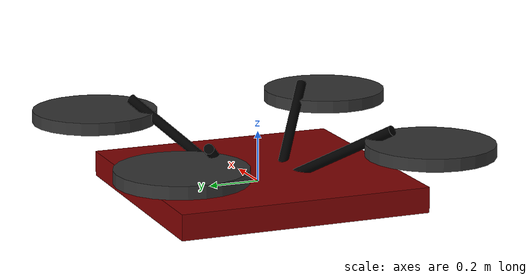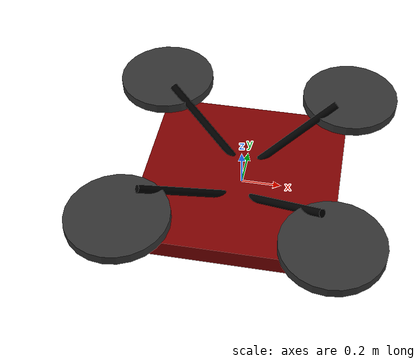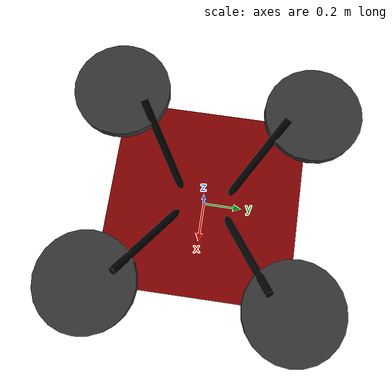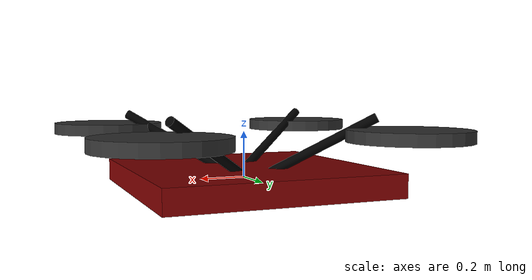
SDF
<?xml version="1.0" ?>
<sdf version="1.7">
    <model name="quadcopter">
        <static>true</static> <!-- The model won't move unless controlled -->

        <!-- Square Base -->
        <link name="base_link">
            <inertial>
                <mass>0</mass> <!-- Weightless -->
                <inertia>
                    <ixx>0</ixx> <iyy>0</iyy> <izz>0</izz>
                </inertia>
            </inertial>
            <visual name="base_visual">
                <geometry>
                    <box>
                        <size>1 1 0.1</size> <!-- Square base of 1x1 with 0.1 thickness -->
                    </box>
                </geometry>
                <material>
                    <ambient>0.2 0.2 0.2 1</ambient> <!-- Red -->
                    <diffuse>0.5 0 0 1</diffuse>
                </material>
            </visual>
            <collision name="base_collision">
                <geometry>
                    <box>
                        <size>1 1 0.1</size>
                    </box>
                </geometry>
            </collision>
        </link>

        <!-- Four Rotors -->
        <link name="rotor_1">
            <pose>0.5 0.5 0.2 0 0 0</pose> <!-- Top-right -->
            <visual name="rotor1_visual">
                <geometry>
                    <cylinder>
                        <radius>0.25</radius> <!-- Half the length of the square base -->
                        <length>0.05</length>
                    </cylinder>
                </geometry>
                <material>
                    <ambient>0.2 0.2 0.2 1</ambient> <!-- Dark Gray -->
                </material>
            </visual>
        </link>

        <link name="rotor_2">
            <pose>-0.5 0.5 0.2 0 0 0</pose> <!-- Top-left -->
            <visual name="rotor2_visual">
                <geometry>
                    <cylinder>
                        <radius>0.25</radius>
                        <length>0.05</length>
                    </cylinder>
                </geometry>
                <material>
                    <ambient>0.2 0.2 0.2 1</ambient>
                </material>
            </visual>
        </link>

        <link name="rotor_3">
            <pose>-0.5 -0.5 0.2 0 0 0</pose> <!-- Bottom-left -->
            <visual name="rotor3_visual">
                <geometry>
                    <cylinder>
                        <radius>0.25</radius>
                        <length>0.05</length>
                    </cylinder>
                </geometry>
                <material>
                    <ambient>0.2 0.2 0.2 1</ambient>
                </material>
            </visual>
        </link>

        <link name="rotor_4">
            <pose>0.5 -0.5 0.2 0 0 0</pose> <!-- Bottom-right -->
            <visual name="rotor4_visual">
                <geometry>
                    <cylinder>
                        <radius>0.25</radius>
                        <length>0.05</length>
                    </cylinder>
                </geometry>
                <material>
                    <ambient>0.2 0.2 0.2 1</ambient>
                </material>
            </visual>
        </link>

        <!-- Four Connecting Rods -->
        <link name="rod_1">
            <pose>0.25 0.25 0.15 -0.5 1 0</pose>
            <visual name="rod1_visual">
                <geometry>
                    <cylinder>
                        <radius>0.02</radius>
                        <length>0.5</length>
                    </cylinder>
                </geometry>
                <material>
                    <ambient>0 0 0 1</ambient> <!-- Black -->
                </material>
            </visual>
        </link>

        <link name="rod_2">
            <pose>-0.25 0.25 0.15 -0.5 -1 0</pose>
            <visual name="rod2_visual">
                <geometry>
                    <cylinder>
                        <radius>0.02</radius>
                        <length>0.5</length>
                    </cylinder>
                </geometry>
                <material>
                    <ambient>0 0 0 1</ambient>
                </material>
            </visual>
        </link>

        <link name="rod_3">
            <pose>-0.25 -0.25 0.15 0.5 -1 0</pose>
            <visual name="rod3_visual">
                <geometry>
                    <cylinder>
                        <radius>0.02</radius>
                        <length>0.5</length>
                    </cylinder>
                </geometry>
                <material>
                    <ambient>0 0 0 1</ambient>
                </material>
            </visual>
        </link>

        <link name="rod_4">
            <pose>0.25 -0.25 0.15 0.5 1 0</pose>
            <visual name="rod4_visual">
                <geometry>
                    <cylinder>
                        <radius>0.02</radius>
                        <length>0.5</length>
                    </cylinder>
                </geometry>
                <material>
                    <ambient>0 0 0 1</ambient>
                </material>
            </visual>
        </link>

    </model>
</sdf>
